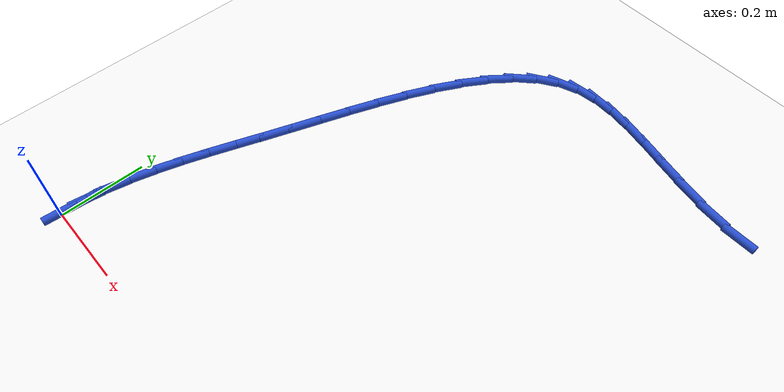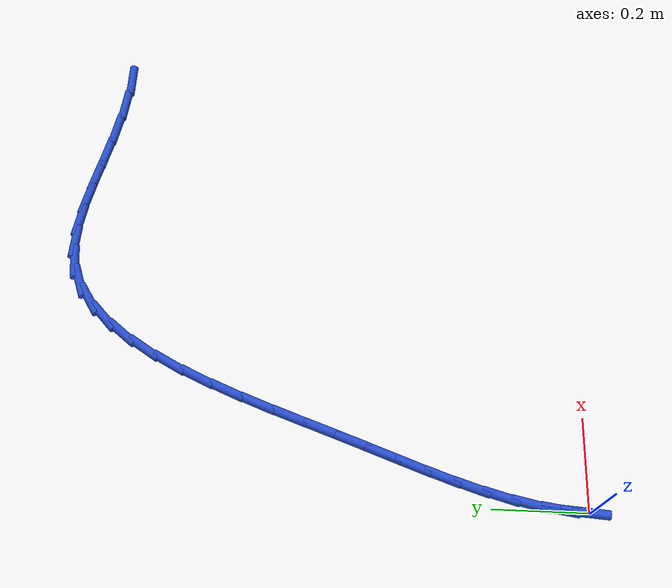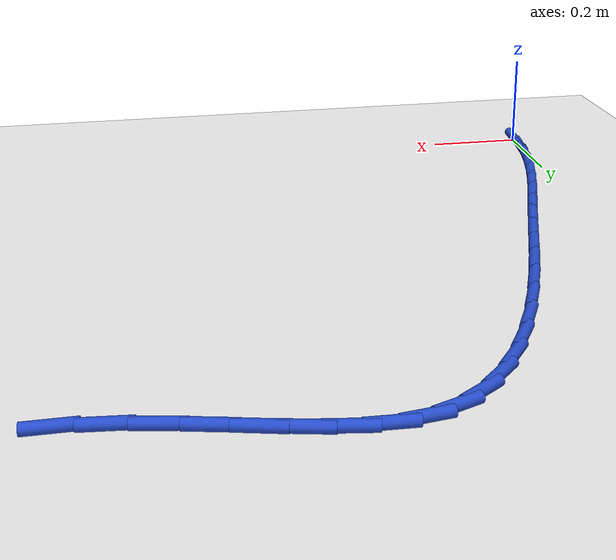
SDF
<sdf version="1.6">
 <world name="default">
  <model name="ground_plane">
   <static>1</static>
   <link name="link">
    <collision name="collision">
     <geometry><plane><normal>0 0 1</normal><size>100 100</size></plane></geometry>
     <surface><friction><ode><mu>100</mu><mu2>50</mu2></ode></friction></surface>
    </collision>
    <visual name="visual">
     <cast_shadows>0</cast_shadows>
     <geometry><plane><normal>0 0 1</normal><size>100 100</size></plane></geometry>
     <material>
      <script><uri>file://media/materials/scripts/gazebo.material</uri><name>Gazebo/WhiteGlow</name></script>
     </material>
    </visual>
   </link>
  </model>
  <model name="line">
   <link name="link_0">
    <pose>3.469446951953614e-18 -2.7755575615628914e-17 0.01 0 1.57 1.4969742942501918</pose>
    <collision name="collision">
     <geometry><cylinder><radius>0.01</radius><length>0.08</length></cylinder></geometry>
    </collision>
    <visual name="visual">
     <material>
      <script><name>Gazebo/Blue</name><uri>file://media/materials/scripts/gazebo.material</uri></script>
     </material>
     <geometry><cylinder><radius>0.01</radius><length>0.08</length></cylinder></geometry>
    </visual>
   </link>
   <link name="link_1">
    <pose>0.004522888358805898 0.06115612236218487 0.01 0 1.57 1.4212068842100414</pose>
    <collision name="collision">
     <geometry><cylinder><radius>0.01</radius><length>0.08</length></cylinder></geometry>
    </collision>
    <visual name="visual">
     <material>
      <script><name>Gazebo/Blue</name><uri>file://media/materials/scripts/gazebo.material</uri></script>
     </material>
     <geometry><cylinder><radius>0.01</radius><length>0.08</length></cylinder></geometry>
    </visual>
   </link>
   <link name="link_2">
    <pose>0.013552158940531293 0.12106556789019994 0.01 0 1.57 1.3557394890519034</pose>
    <collision name="collision">
     <geometry><cylinder><radius>0.01</radius><length>0.08</length></cylinder></geometry>
    </collision>
    <visual name="visual">
     <material>
      <script><name>Gazebo/Blue</name><uri>file://media/materials/scripts/gazebo.material</uri></script>
     </material>
     <geometry><cylinder><radius>0.01</radius><length>0.08</length></cylinder></geometry>
    </visual>
   </link>
   <link name="link_3">
    <pose>0.026488318845179375 0.18028764308635659 0.01 0 1.57 1.302544915836024</pose>
    <collision name="collision">
     <geometry><cylinder><radius>0.01</radius><length>0.08</length></cylinder></geometry>
    </collision>
    <visual name="visual">
     <material>
      <script><name>Gazebo/Blue</name><uri>file://media/materials/scripts/gazebo.material</uri></script>
     </material>
     <geometry><cylinder><radius>0.01</radius><length>0.08</length></cylinder></geometry>
    </visual>
   </link>
   <link name="link_4">
    <pose>0.042731875172753404 0.23938165445296633 0.01 0 1.57 1.2625664998454007</pose>
    <collision name="collision">
     <geometry><cylinder><radius>0.01</radius><length>0.08</length></cylinder></geometry>
    </collision>
    <visual name="visual">
     <material>
      <script><name>Gazebo/Blue</name><uri>file://media/materials/scripts/gazebo.material</uri></script>
     </material>
     <geometry><cylinder><radius>0.01</radius><length>0.08</length></cylinder></geometry>
    </visual>
   </link>
   <link name="link_5">
    <pose>0.06168333502325661 0.2989069084923406 0.01 0 1.57 1.2358988868018967</pose>
    <collision name="collision">
     <geometry><cylinder><radius>0.01</radius><length>0.08</length></cylinder></geometry>
    </collision>
    <visual name="visual">
     <material>
      <script><name>Gazebo/Blue</name><uri>file://media/materials/scripts/gazebo.material</uri></script>
     </material>
     <geometry><cylinder><radius>0.01</radius><length>0.08</length></cylinder></geometry>
    </visual>
   </link>
   <link name="link_6">
    <pose>0.08274320549669226 0.35942271170679085 0.01 0 1.57 1.222033040452034</pose>
    <collision name="collision">
     <geometry><cylinder><radius>0.01</radius><length>0.08</length></cylinder></geometry>
    </collision>
    <visual name="visual">
     <material>
      <script><name>Gazebo/Blue</name><uri>file://media/materials/scripts/gazebo.material</uri></script>
     </material>
     <geometry><cylinder><radius>0.01</radius><length>0.08</length></cylinder></geometry>
    </visual>
   </link>
   <link name="link_7">
    <pose>0.10531199369306356 0.42148837059862876 0.01 0 1.57 1.2200736016445788</pose>
    <collision name="collision">
     <geometry><cylinder><radius>0.01</radius><length>0.08</length></cylinder></geometry>
    </collision>
    <visual name="visual">
     <material>
      <script><name>Gazebo/Blue</name><uri>file://media/materials/scripts/gazebo.material</uri></script>
     </material>
     <geometry><cylinder><radius>0.01</radius><length>0.08</length></cylinder></geometry>
    </visual>
   </link>
   <link name="link_8">
    <pose>0.12879020671237368 0.48566319167016536 0.01 0 1.57 1.2272218061650193</pose>
    <collision name="collision">
     <geometry><cylinder><radius>0.01</radius><length>0.08</length></cylinder></geometry>
    </collision>
    <visual name="visual">
     <material>
      <script><name>Gazebo/Blue</name><uri>file://media/materials/scripts/gazebo.material</uri></script>
     </material>
     <geometry><cylinder><radius>0.01</radius><length>0.08</length></cylinder></geometry>
    </visual>
   </link>
   <link name="link_9">
    <pose>0.15265244544707263 0.5523614982899023 0.01 0 1.57 1.229879293612477</pose>
    <collision name="collision">
     <geometry><cylinder><radius>0.01</radius><length>0.08</length></cylinder></geometry>
    </collision>
    <visual name="visual">
     <material>
      <script><name>Gazebo/Blue</name><uri>file://media/materials/scripts/gazebo.material</uri></script>
     </material>
     <geometry><cylinder><radius>0.01</radius><length>0.08</length></cylinder></geometry>
    </visual>
   </link>
   <link name="link_10">
    <pose>0.17695404057550113 0.6208612699913814 0.01 0 1.57 1.222493126544658</pose>
    <collision name="collision">
     <geometry><cylinder><radius>0.01</radius><length>0.08</length></cylinder></geometry>
    </collision>
    <visual name="visual">
     <material>
      <script><name>Gazebo/Blue</name><uri>file://media/materials/scripts/gazebo.material</uri></script>
     </material>
     <geometry><cylinder><radius>0.01</radius><length>0.08</length></cylinder></geometry>
    </visual>
   </link>
   <link name="link_11">
    <pose>0.2020241615162171 0.6899046519635359 0.01 0 1.57 1.2050231498314623</pose>
    <collision name="collision">
     <geometry><cylinder><radius>0.01</radius><length>0.08</length></cylinder></geometry>
    </collision>
    <visual name="visual">
     <material>
      <script><name>Gazebo/Blue</name><uri>file://media/materials/scripts/gazebo.material</uri></script>
     </material>
     <geometry><cylinder><radius>0.01</radius><length>0.08</length></cylinder></geometry>
    </visual>
   </link>
   <link name="link_12">
    <pose>0.22819358794299796 0.7582306385261047 0.01 0 1.57 1.176587316440554</pose>
    <collision name="collision">
     <geometry><cylinder><radius>0.01</radius><length>0.08</length></cylinder></geometry>
    </collision>
    <visual name="visual">
     <material>
      <script><name>Gazebo/Blue</name><uri>file://media/materials/scripts/gazebo.material</uri></script>
     </material>
     <geometry><cylinder><radius>0.01</radius><length>0.08</length></cylinder></geometry>
    </visual>
   </link>
   <link name="link_13">
    <pose>0.2557930995296213 0.8245782239988277 0.01 0 1.57 1.1353422863582912</pose>
    <collision name="collision">
     <geometry><cylinder><radius>0.01</radius><length>0.08</length></cylinder></geometry>
    </collision>
    <visual name="visual">
     <material>
      <script><name>Gazebo/Blue</name><uri>file://media/materials/scripts/gazebo.material</uri></script>
     </material>
     <geometry><cylinder><radius>0.01</radius><length>0.08</length></cylinder></geometry>
    </visual>
   </link>
   <link name="link_14">
    <pose>0.28515347594986473 0.8876864027014446 0.01 0 1.57 1.0782582159596954</pose>
    <collision name="collision">
     <geometry><cylinder><radius>0.01</radius><length>0.08</length></cylinder></geometry>
    </collision>
    <visual name="visual">
     <material>
      <script><name>Gazebo/Blue</name><uri>file://media/materials/scripts/gazebo.material</uri></script>
     </material>
     <geometry><cylinder><radius>0.01</radius><length>0.08</length></cylinder></geometry>
    </visual>
   </link>
   <link name="link_15">
    <pose>0.3166054968775058 0.9462941689536949 0.01 0 1.57 1.0007748955214626</pose>
    <collision name="collision">
     <geometry><cylinder><radius>0.01</radius><length>0.08</length></cylinder></geometry>
    </collision>
    <visual name="visual">
     <material>
      <script><name>Gazebo/Blue</name><uri>file://media/materials/scripts/gazebo.material</uri></script>
     </material>
     <geometry><cylinder><radius>0.01</radius><length>0.08</length></cylinder></geometry>
    </visual>
   </link>
   <link name="link_16">
    <pose>0.3504799419863219 0.9991405170753178 0.01 0 1.57 0.8964745532313138</pose>
    <collision name="collision">
     <geometry><cylinder><radius>0.01</radius><length>0.08</length></cylinder></geometry>
    </collision>
    <visual name="visual">
     <material>
      <script><name>Gazebo/Blue</name><uri>file://media/materials/scripts/gazebo.material</uri></script>
     </material>
     <geometry><cylinder><radius>0.01</radius><length>0.08</length></cylinder></geometry>
    </visual>
   </link>
   <link name="link_17">
    <pose>0.38710759095009084 1.0449644413860533 0.01 0 1.57 0.7573009914138769</pose>
    <collision name="collision">
     <geometry><cylinder><radius>0.01</radius><length>0.08</length></cylinder></geometry>
    </collision>
    <visual name="visual">
     <material>
      <script><name>Gazebo/Blue</name><uri>file://media/materials/scripts/gazebo.material</uri></script>
     </material>
     <geometry><cylinder><radius>0.01</radius><length>0.08</length></cylinder></geometry>
    </visual>
   </link>
   <link name="link_18">
    <pose>0.42681922344258993 1.0825049362056407 0.01 0 1.57 0.5757865824259408</pose>
    <collision name="collision">
     <geometry><cylinder><radius>0.01</radius><length>0.08</length></cylinder></geometry>
    </collision>
    <visual name="visual">
     <material>
      <script><name>Gazebo/Blue</name><uri>file://media/materials/scripts/gazebo.material</uri></script>
     </material>
     <geometry><cylinder><radius>0.01</radius><length>0.08</length></cylinder></geometry>
    </visual>
   </link>
   <link name="link_19">
    <pose>0.46994561913759725 1.1105009958538203 0.01 0 1.57 0.35171808644851144</pose>
    <collision name="collision">
     <geometry><cylinder><radius>0.01</radius><length>0.08</length></cylinder></geometry>
    </collision>
    <visual name="visual">
     <material>
      <script><name>Gazebo/Blue</name><uri>file://media/materials/scripts/gazebo.material</uri></script>
     </material>
     <geometry><cylinder><radius>0.01</radius><length>0.08</length></cylinder></geometry>
    </visual>
   </link>
   <link name="link_20">
    <pose>0.5168160664939092 1.127701359491443 0.01 0 1.57 0.1231583542330677</pose>
    <collision name="collision">
     <geometry><cylinder><radius>0.01</radius><length>0.08</length></cylinder></geometry>
    </collision>
    <visual name="visual">
     <material>
      <script><name>Gazebo/Blue</name><uri>file://media/materials/scripts/gazebo.material</uri></script>
     </material>
     <geometry><cylinder><radius>0.01</radius><length>0.08</length></cylinder></geometry>
    </visual>
   </link>
   <link name="link_21">
    <pose>0.5675867456821113 1.1339860000622672 0.01 0 1.57 -0.047297401686786505</pose>
    <collision name="collision">
     <geometry><cylinder><radius>0.01</radius><length>0.08</length></cylinder></geometry>
    </collision>
    <visual name="visual">
     <material>
      <script><name>Gazebo/Blue</name><uri>file://media/materials/scripts/gazebo.material</uri></script>
     </material>
     <geometry><cylinder><radius>0.01</radius><length>0.08</length></cylinder></geometry>
    </visual>
   </link>
   <link name="link_22">
    <pose>0.6220815062329613 1.1314066157968832 0.01 0 1.57 -0.15638315728741162</pose>
    <collision name="collision">
     <geometry><cylinder><radius>0.01</radius><length>0.08</length></cylinder></geometry>
    </collision>
    <visual name="visual">
     <material>
      <script><name>Gazebo/Blue</name><uri>file://media/materials/scripts/gazebo.material</uri></script>
     </material>
     <geometry><cylinder><radius>0.01</radius><length>0.08</length></cylinder></geometry>
    </visual>
   </link>
   <link name="link_23">
    <pose>0.6800865498197627 1.1222609273933577 0.01 0 1.57 -0.21542872740674363</pose>
    <collision name="collision">
     <geometry><cylinder><radius>0.01</radius><length>0.08</length></cylinder></geometry>
    </collision>
    <visual name="visual">
     <material>
      <script><name>Gazebo/Blue</name><uri>file://media/materials/scripts/gazebo.material</uri></script>
     </material>
     <geometry><cylinder><radius>0.01</radius><length>0.08</length></cylinder></geometry>
    </visual>
   </link>
   <link name="link_24">
    <pose>0.7413880781158187 1.1088466555497563 0.01 0 1.57 -0.2345596661008418</pose>
    <collision name="collision">
     <geometry><cylinder><radius>0.01</radius><length>0.08</length></cylinder></geometry>
    </collision>
    <visual name="visual">
     <material>
      <script><name>Gazebo/Blue</name><uri>file://media/materials/scripts/gazebo.material</uri></script>
     </material>
     <geometry><cylinder><radius>0.01</radius><length>0.08</length></cylinder></geometry>
    </visual>
   </link>
   <link name="link_25">
    <pose>0.8057722927944332 1.0934615209641465 0.01 0 1.57 -0.22027154608646654</pose>
    <collision name="collision">
     <geometry><cylinder><radius>0.01</radius><length>0.08</length></cylinder></geometry>
    </collision>
    <visual name="visual">
     <material>
      <script><name>Gazebo/Blue</name><uri>file://media/materials/scripts/gazebo.material</uri></script>
     </material>
     <geometry><cylinder><radius>0.01</radius><length>0.08</length></cylinder></geometry>
    </visual>
   </link>
   <link name="link_26">
    <pose>0.8730253955289085 1.0784032443345928 0.01 0 1.57 -0.17601692685096598</pose>
    <collision name="collision">
     <geometry><cylinder><radius>0.01</radius><length>0.08</length></cylinder></geometry>
    </collision>
    <visual name="visual">
     <material>
      <script><name>Gazebo/Blue</name><uri>file://media/materials/scripts/gazebo.material</uri></script>
     </material>
     <geometry><cylinder><radius>0.01</radius><length>0.08</length></cylinder></geometry>
    </visual>
   </link>
   <link name="link_27">
    <pose>0.942933587992549 1.065969546359163 0.01 0 1.57 -0.10345041117700748</pose>
    <collision name="collision">
     <geometry><cylinder><radius>0.01</radius><length>0.08</length></cylinder></geometry>
    </collision>
    <visual name="visual">
     <material>
      <script><name>Gazebo/Blue</name><uri>file://media/materials/scripts/gazebo.material</uri></script>
     </material>
     <geometry><cylinder><radius>0.01</radius><length>0.08</length></cylinder></geometry>
    </visual>
   </link>
   <link name="link_28">
    <pose>1.0152830718586572 1.0584581477359225 0.01 0 1.57 -0.00537331427583893</pose>
    <collision name="collision">
     <geometry><cylinder><radius>0.01</radius><length>0.08</length></cylinder></geometry>
    </collision>
    <visual name="visual">
     <material>
      <script><name>Gazebo/Blue</name><uri>file://media/materials/scripts/gazebo.material</uri></script>
     </material>
     <geometry><cylinder><radius>0.01</radius><length>0.08</length></cylinder></geometry>
    </visual>
   </link>
   <link name="link_121">
    <pose>0.004661424876196765 0.06093636766345356 0.01 0 1.57 1.494448418645752</pose>
    <collision name="collision">
     <geometry><cylinder><radius>0.01</radius><length>0.08</length></cylinder></geometry>
    </collision>
    <visual name="visual">
     <material>
      <script><name>Gazebo/Blue</name><uri>file://media/materials/scripts/gazebo.material</uri></script>
     </material>
     <geometry><cylinder><radius>0.01</radius><length>0.08</length></cylinder></geometry>
    </visual>
   </link>
  </model>
 </world>
</sdf>
